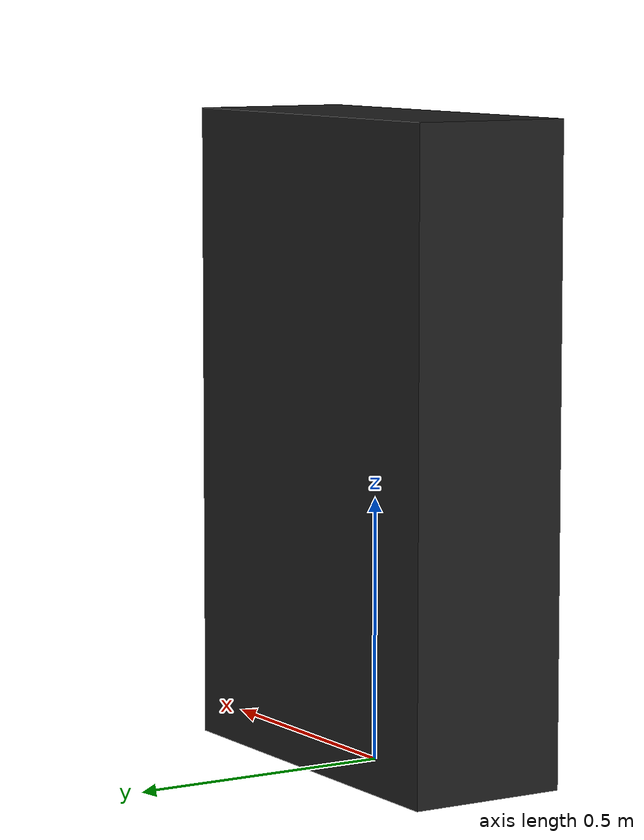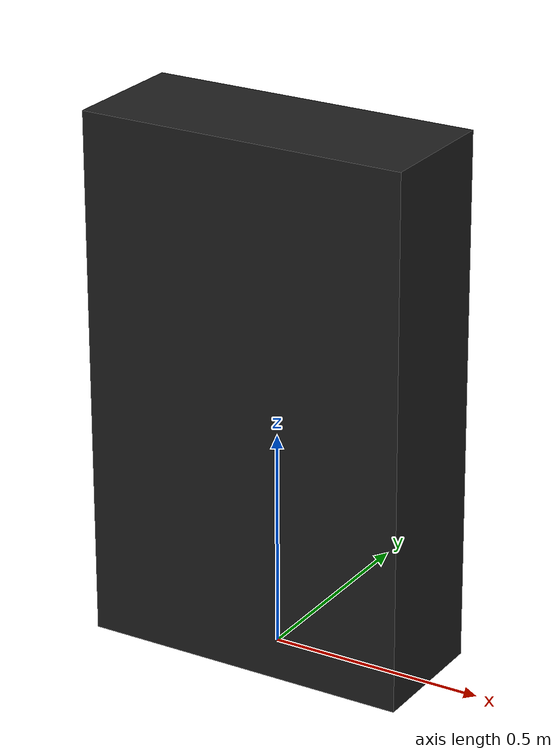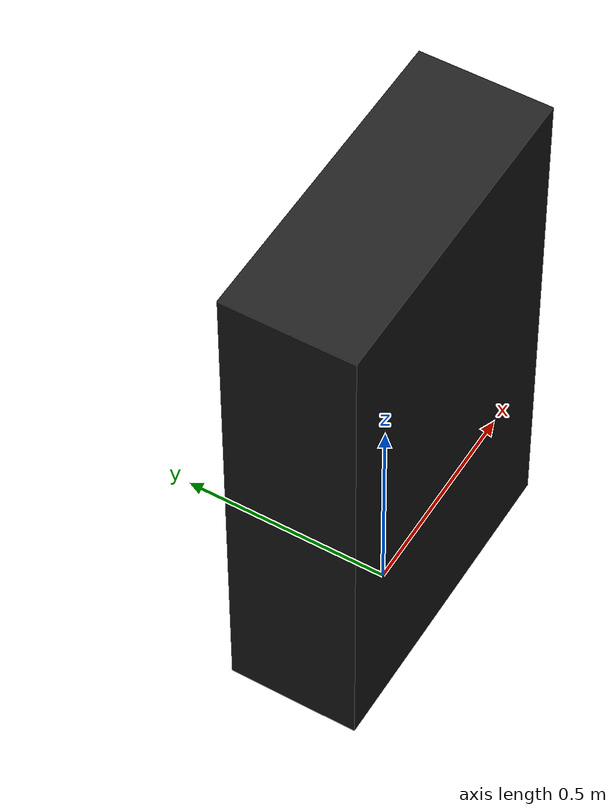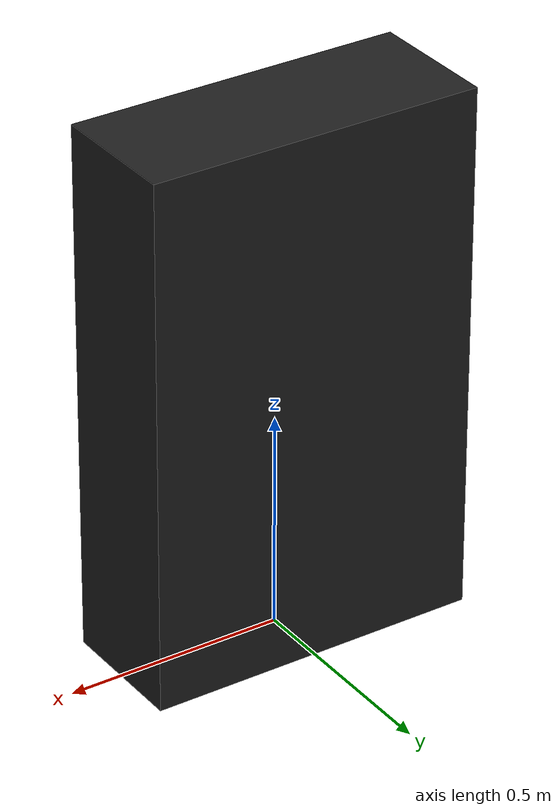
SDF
<?xml version="1.0" ?>
<sdf version="1.7">
  <model name="everblock_small_black">
    <static>true</static>
    <link name="block">
      <pose>0 0 0.6096 0 0 0</pose>
      <collision name="collision">
        <geometry>
          <box>
            <size>0.762 0.3048 1.2192</size>
          </box>
        </geometry>
      </collision>
      <visual name="visual">
        <geometry>
          <mesh>
            <uri>model://everblock_small_black/meshes/block.dae</uri>
            <scale>0.762 0.3048 1.2192</scale>
          </mesh>
	  	</geometry>
        <material>
          <script>
            <uri>model://everblock_small_black/materials/scripts</uri>
            <uri>model://everblock_small_black/materials/textures</uri>
            <name>BlockSmallBlack</name>
          </script>
        </material>
      </visual>
    </link>
  </model>
</sdf>
